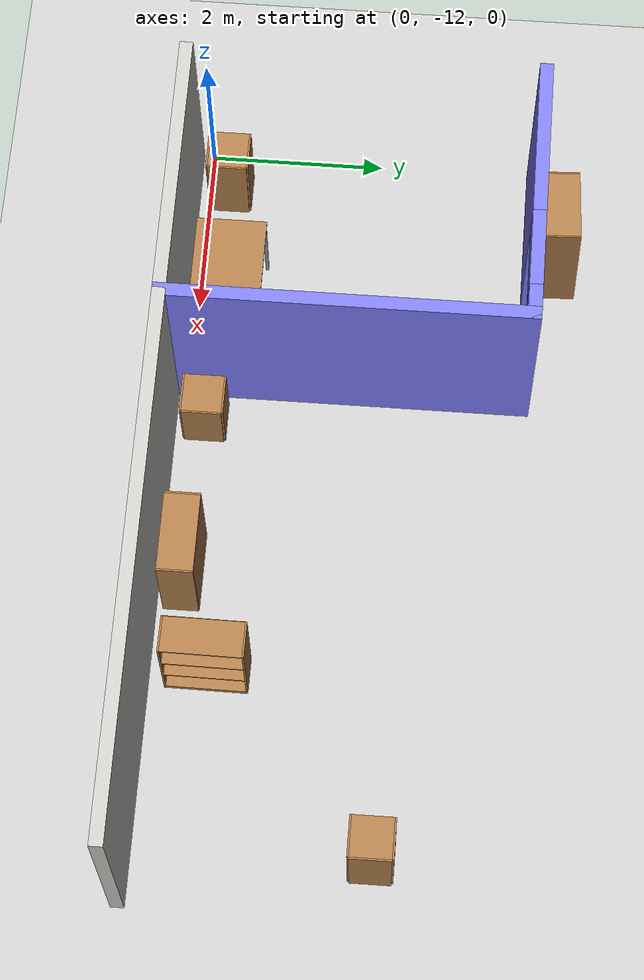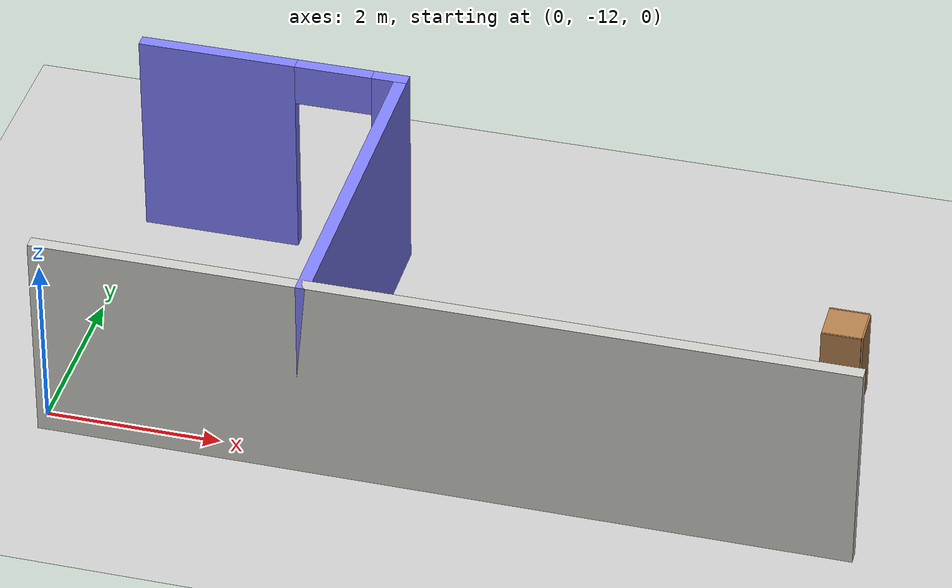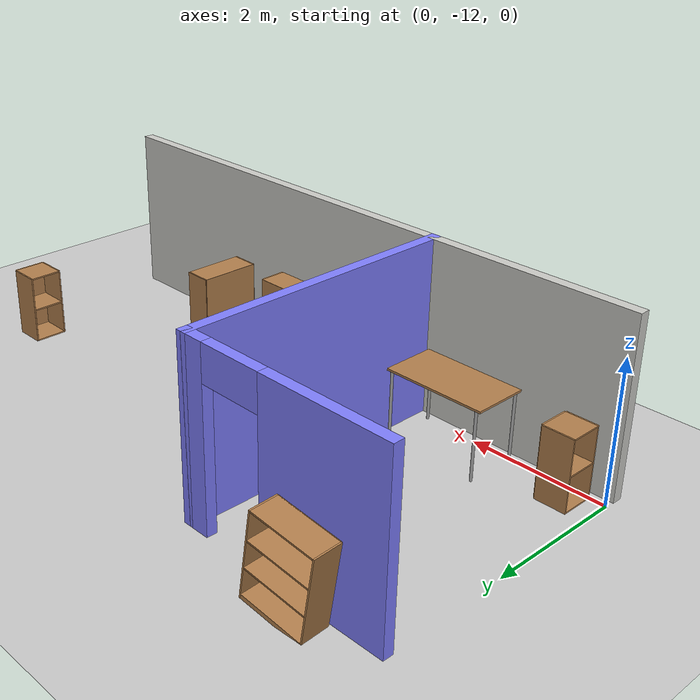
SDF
<sdf version="1.6">
 <world name="default">
  <model name="ground_plane">
   <static>1</static>
   <link name="link">
    <collision name="collision">
     <geometry><plane><normal>0 0 1</normal><size>100 100</size></plane></geometry>
     <surface>
      <contact><collide_bitmask>65535</collide_bitmask></contact>
      <friction><ode><mu>100</mu><mu2>50</mu2></ode></friction>
     </surface>
    </collision>
    <visual name="visual">
     <cast_shadows>0</cast_shadows>
     <geometry><plane><normal>0 0 1</normal><size>100 100</size></plane></geometry>
     <material>
      <script><uri>file://media/materials/scripts/gazebo.material</uri><name>Gazebo/Grey</name></script>
     </material>
    </visual>
   </link>
  </model>
  <model name="table_0">
   <static>1</static>
   <link name="link">
    <collision name="surface">
     <pose>0 0 1 0 -0 0</pose>
     <geometry><box><size>1.5 0.8 0.03</size></box></geometry>
     <surface><friction><ode><mu>0.6</mu><mu2>0.6</mu2></ode></friction></surface>
    </collision>
    <visual name="visual1">
     <pose>0 0 1 0 -0 0</pose>
     <geometry><box><size>1.5 0.8 0.03</size></box></geometry>
     <material>
      <script><uri>file://media/materials/scripts/gazebo.material</uri><name>Gazebo/Wood</name></script>
     </material>
    </visual>
    <collision name="front_left_leg">
     <pose>0.68 0.38 0.5 0 -0 0</pose>
     <geometry><cylinder><radius>0.02</radius><length>1</length></cylinder></geometry>
    </collision>
    <visual name="front_left_leg">
     <pose>0.68 0.38 0.5 0 -0 0</pose>
     <geometry><cylinder><radius>0.02</radius><length>1</length></cylinder></geometry>
     <material>
      <script><uri>file://media/materials/scripts/gazebo.material</uri><name>Gazebo/Grey</name></script>
     </material>
    </visual>
    <collision name="front_right_leg">
     <pose>0.68 -0.38 0.5 0 -0 0</pose>
     <geometry><cylinder><radius>0.02</radius><length>1</length></cylinder></geometry>
    </collision>
    <visual name="front_right_leg">
     <pose>0.68 -0.38 0.5 0 -0 0</pose>
     <geometry><cylinder><radius>0.02</radius><length>1</length></cylinder></geometry>
     <material>
      <script><uri>file://media/materials/scripts/gazebo.material</uri><name>Gazebo/Grey</name></script>
     </material>
    </visual>
    <collision name="back_right_leg">
     <pose>-0.68 -0.38 0.5 0 -0 0</pose>
     <geometry><cylinder><radius>0.02</radius><length>1</length></cylinder></geometry>
    </collision>
    <visual name="back_right_leg">
     <pose>-0.68 -0.38 0.5 0 -0 0</pose>
     <geometry><cylinder><radius>0.02</radius><length>1</length></cylinder></geometry>
     <material>
      <script><uri>file://media/materials/scripts/gazebo.material</uri><name>Gazebo/Grey</name></script>
     </material>
    </visual>
    <collision name="back_left_leg">
     <pose>-0.68 0.38 0.5 0 -0 0</pose>
     <geometry><cylinder><radius>0.02</radius><length>1</length></cylinder></geometry>
    </collision>
    <visual name="back_left_leg">
     <pose>-0.68 0.38 0.5 0 -0 0</pose>
     <geometry><cylinder><radius>0.02</radius><length>1</length></cylinder></geometry>
     <material>
      <script><uri>file://media/materials/scripts/gazebo.material</uri><name>Gazebo/Grey</name></script>
     </material>
    </visual>
   </link>
   <pose>2.11697 -11.6324 0 0 -0 0</pose>
  </model>
  <model name="bookshelf">
   <static>1</static>
   <link name="link">
    <inertial><mass>1</mass></inertial>
    <collision name="back">
     <pose>0 0.005 0.6 0 -0 0</pose>
     <geometry><box><size>0.9 0.01 1.2</size></box></geometry>
    </collision>
    <visual name="visual1">
     <pose>0 0.005 0.6 0 -0 0</pose>
     <geometry><box><size>0.9 0.01 1.2</size></box></geometry>
     <material>
      <script><uri>file://media/materials/scripts/gazebo.material</uri><name>Gazebo/Wood</name></script>
     </material>
    </visual>
    <collision name="left_side">
     <pose>0.45 -0.195 0.6 0 -0 0</pose>
     <geometry><box><size>0.02 0.4 1.2</size></box></geometry>
    </collision>
    <visual name="visual2">
     <pose>0.45 -0.195 0.6 0 -0 0</pose>
     <geometry><box><size>0.02 0.4 1.2</size></box></geometry>
     <material>
      <script><uri>file://media/materials/scripts/gazebo.material</uri><name>Gazebo/Wood</name></script>
     </material>
    </visual>
    <collision name="right_side">
     <pose>-0.45 -0.195 0.6 0 -0 0</pose>
     <geometry><box><size>0.02 0.4 1.2</size></box></geometry>
    </collision>
    <visual name="visual3">
     <pose>-0.45 -0.195 0.6 0 -0 0</pose>
     <geometry><box><size>0.02 0.4 1.2</size></box></geometry>
     <material>
      <script><uri>file://media/materials/scripts/gazebo.material</uri><name>Gazebo/Wood</name></script>
     </material>
    </visual>
    <collision name="bottom">
     <pose>0 -0.195 0.03 0 -0 0</pose>
     <geometry><box><size>0.88 0.4 0.06</size></box></geometry>
    </collision>
    <visual name="visual4">
     <pose>0 -0.195 0.03 0 -0 0</pose>
     <geometry><box><size>0.88 0.4 0.06</size></box></geometry>
     <material>
      <script><uri>file://media/materials/scripts/gazebo.material</uri><name>Gazebo/Wood</name></script>
     </material>
    </visual>
    <collision name="top">
     <pose>0 -0.195 1.19 0 -0 0</pose>
     <geometry><box><size>0.88 0.4 0.02</size></box></geometry>
    </collision>
    <visual name="visual5">
     <pose>0 -0.195 1.19 0 -0 0</pose>
     <geometry><box><size>0.88 0.4 0.02</size></box></geometry>
     <material>
      <script><uri>file://media/materials/scripts/gazebo.material</uri><name>Gazebo/Wood</name></script>
     </material>
    </visual>
    <collision name="low_shelf">
     <pose>0 -0.195 0.43 0 -0 0</pose>
     <geometry><box><size>0.88 0.4 0.02</size></box></geometry>
    </collision>
    <visual name="visual6">
     <pose>0 -0.195 0.43 0 -0 0</pose>
     <geometry><box><size>0.88 0.4 0.02</size></box></geometry>
     <material>
      <script><uri>file://media/materials/scripts/gazebo.material</uri><name>Gazebo/Wood</name></script>
     </material>
    </visual>
    <collision name="high_shelf">
     <pose>0 -0.195 0.8 0 -0 0</pose>
     <geometry><box><size>0.88 0.4 0.02</size></box></geometry>
    </collision>
    <visual name="visual7">
     <pose>0 -0.195 0.8 0 -0 0</pose>
     <geometry><box><size>0.88 0.4 0.02</size></box></geometry>
     <material>
      <script><uri>file://media/materials/scripts/gazebo.material</uri><name>Gazebo/Wood</name></script>
     </material>
    </visual>
   </link>
   <pose>5.28995 -11.6581 0 0 -0 0</pose>
  </model>
  <model name="cabinet">
   <static>1</static>
   <link name="cabinet_bottom_plate">
    <inertial>
     <pose>0 0 -1 0 -0 0</pose>
     <inertia><ixx>2.05</ixx><ixy>0</ixy><ixz>0</ixz><iyy>2.05</iyy><iyz>0</iyz><izz>2.05</izz></inertia>
     <mass>25</mass>
    </inertial>
    <collision name="cabinet_bottom_plate_geom">
     <pose>0 0 0.01 0 -0 0</pose>
     <geometry><box><size>0.45 0.45 0.02</size></box></geometry>
    </collision>
    <visual name="cabinet_bottom_plate_geom_visual">
     <pose>0 0 0.01 0 -0 0</pose>
     <geometry><box><size>0.45 0.45 0.02</size></box></geometry>
     <material>
      <script><uri>file://media/materials/scripts/gazebo.material</uri><name>Gazebo/Wood</name></script>
     </material>
    </visual>
    <collision name="cabinet_bottom_plate_geom_cabinet_back_plate">
     <pose>0.235 0 0.51 0 -0 0</pose>
     <geometry><box><size>0.02 0.45 1.02</size></box></geometry>
    </collision>
    <visual name="cabinet_bottom_plate_geom_cabinet_back_plate_visual">
     <pose>0.235 0 0.51 0 -0 0</pose>
     <geometry><box><size>0.02 0.45 1.02</size></box></geometry>
     <material>
      <script><uri>file://media/materials/scripts/gazebo.material</uri><name>Gazebo/Wood</name></script>
     </material>
    </visual>
    <collision name="cabinet_bottom_plate_geom_cabinet_left_plate">
     <pose>0 0.235 0.51 0 -0 0</pose>
     <geometry><box><size>0.45 0.02 1.02</size></box></geometry>
    </collision>
    <visual name="cabinet_bottom_plate_geom_cabinet_left_plate_visual">
     <pose>0 0.235 0.51 0 -0 0</pose>
     <geometry><box><size>0.45 0.02 1.02</size></box></geometry>
     <material>
      <script><uri>file://media/materials/scripts/gazebo.material</uri><name>Gazebo/Wood</name></script>
     </material>
    </visual>
    <collision name="cabinet_bottom_plate_geom_cabinet_middle_plate">
     <pose>0 0 0.51 0 -0 0</pose>
     <geometry><box><size>0.45 0.45 0.02</size></box></geometry>
    </collision>
    <visual name="cabinet_bottom_plate_geom_cabinet_middle_plate_visual">
     <pose>0 0 0.51 0 -0 0</pose>
     <geometry><box><size>0.45 0.45 0.02</size></box></geometry>
     <material>
      <script><uri>file://media/materials/scripts/gazebo.material</uri><name>Gazebo/Wood</name></script>
     </material>
    </visual>
    <collision name="cabinet_bottom_plate_geom_cabinet_right_plate">
     <pose>0 -0.235 0.51 0 -0 0</pose>
     <geometry><box><size>0.45 0.02 1.02</size></box></geometry>
    </collision>
    <visual name="cabinet_bottom_plate_geom_cabinet_right_plate_visual">
     <pose>0 -0.235 0.51 0 -0 0</pose>
     <geometry><box><size>0.45 0.02 1.02</size></box></geometry>
     <material>
      <script><uri>file://media/materials/scripts/gazebo.material</uri><name>Gazebo/Wood</name></script>
     </material>
    </visual>
    <collision name="cabinet_bottom_plate_geom_cabinet_top_plate">
     <pose>0 0 1.01 0 -0 0</pose>
     <geometry><box><size>0.45 0.45 0.02</size></box></geometry>
    </collision>
    <visual name="cabinet_bottom_plate_geom_cabinet_top_plate_visual">
     <pose>0 0 1.01 0 -0 0</pose>
     <geometry><box><size>0.45 0.45 0.02</size></box></geometry>
     <material>
      <script><uri>file://media/materials/scripts/gazebo.material</uri><name>Gazebo/Wood</name></script>
     </material>
    </visual>
   </link>
   <pose>0.457924 -11.7568 0 0 -0 0</pose>
  </model>
  <model name="my_building">
   <link name="Wall_15">
    <pose>-3 -2 0 0 -0 0</pose>
    <inertial>
     <mass>1</mass>
     <inertia><ixx>1</ixx><ixy>0</ixy><ixz>0</ixz><iyy>1</iyy><iyz>0</iyz><izz>1</izz></inertia>
    </inertial>
    <visual name="Wall_15_Visual_0">
     <pose>-0.656017 0 1.25 0 -0 0</pose>
     <geometry><box><size>1.83797 0.15 2.5</size></box></geometry>
     <material>
      <script><uri>file://media/materials/scripts/gazebo.material</uri><name>Gazebo/Grey</name></script>
      <ambient>0.5 0.5 1 1</ambient>
      <shader type="pixel"><normal_map>__default__</normal_map></shader>
      <diffuse>0.7 0.7 0.7 1</diffuse>
      <specular>0.01 0.01 0.01 1</specular>
      <emissive>0 0 0 1</emissive>
     </material>
     <meta><layer>0</layer></meta>
    </visual>
    <visual name="Wall_15_Visual_1">
     <pose>1.36898 0 1.25 0 -0 0</pose>
     <geometry><box><size>0.412034 0.15 2.5</size></box></geometry>
     <material>
      <script><uri>file://media/materials/scripts/gazebo.material</uri><name>Gazebo/Grey</name></script>
      <ambient>0.5 0.5 1 1</ambient>
      <shader type="pixel"><normal_map>__default__</normal_map></shader>
      <diffuse>0.7 0.7 0.7 1</diffuse>
      <specular>0.01 0.01 0.01 1</specular>
      <emissive>0 0 0 1</emissive>
     </material>
     <meta><layer>0</layer></meta>
    </visual>
    <visual name="Wall_15_Visual_2">
     <pose>0.712966 0 2.25 0 -0 0</pose>
     <geometry><box><size>0.9 0.15 0.5</size></box></geometry>
     <material>
      <script><uri>file://media/materials/scripts/gazebo.material</uri><name>Gazebo/Grey</name></script>
      <ambient>0.5 0.5 1 1</ambient>
      <shader type="pixel"><normal_map>__default__</normal_map></shader>
      <diffuse>0.7 0.7 0.7 1</diffuse>
      <specular>0.01 0.01 0.01 1</specular>
      <emissive>0 0 0 1</emissive>
     </material>
     <meta><layer>0</layer></meta>
    </visual>
    <collision name="Wall_15_Collision_0">
     <pose>-0.656017 0 1.25 0 -0 0</pose>
     <geometry><box><size>1.83797 0.15 2.5</size></box></geometry>
     <surface>
      <friction>
       <ode><mu>1</mu><mu2>1</mu2><fdir1>0 0 0</fdir1><slip1>0</slip1><slip2>0</slip2></ode>
       <torsional>
        <coefficient>1</coefficient>
        <patch_radius>0</patch_radius>
        <surface_radius>0</surface_radius>
        <use_patch_radius>1</use_patch_radius>
        <ode><slip>0</slip></ode>
       </torsional>
      </friction>
      <bounce><restitution_coefficient>0</restitution_coefficient><threshold>1e+06</threshold></bounce>
      <contact>
       <collide_without_contact>0</collide_without_contact>
       <collide_without_contact_bitmask>1</collide_without_contact_bitmask>
       <collide_bitmask>1</collide_bitmask>
       <ode>
        <soft_cfm>0</soft_cfm>
        <soft_erp>0.2</soft_erp>
        <kp>1e+13</kp>
        <kd>1</kd>
        <max_vel>0.01</max_vel>
        <min_depth>0</min_depth>
       </ode>
       <bullet>
        <split_impulse>1</split_impulse>
        <split_impulse_penetration_threshold>-0.01</split_impulse_penetration_threshold>
        <soft_cfm>0</soft_cfm>
        <soft_erp>0.2</soft_erp>
        <kp>1e+13</kp>
        <kd>1</kd>
       </bullet>
      </contact>
     </surface>
    </collision>
    <collision name="Wall_15_Collision_2">
     <pose>0.712966 0 2.25 0 -0 0</pose>
     <geometry><box><size>0.9 0.15 0.5</size></box></geometry>
     <surface>
      <friction>
       <ode><mu>1</mu><mu2>1</mu2><fdir1>0 0 0</fdir1><slip1>0</slip1><slip2>0</slip2></ode>
       <torsional>
        <coefficient>1</coefficient>
        <patch_radius>0</patch_radius>
        <surface_radius>0</surface_radius>
        <use_patch_radius>1</use_patch_radius>
        <ode><slip>0</slip></ode>
       </torsional>
      </friction>
      <bounce><restitution_coefficient>0</restitution_coefficient><threshold>1e+06</threshold></bounce>
      <contact>
       <collide_without_contact>0</collide_without_contact>
       <collide_without_contact_bitmask>1</collide_without_contact_bitmask>
       <collide_bitmask>1</collide_bitmask>
       <ode>
        <soft_cfm>0</soft_cfm>
        <soft_erp>0.2</soft_erp>
        <kp>1e+13</kp>
        <kd>1</kd>
        <max_vel>0.01</max_vel>
        <min_depth>0</min_depth>
       </ode>
       <bullet>
        <split_impulse>1</split_impulse>
        <split_impulse_penetration_threshold>-0.01</split_impulse_penetration_threshold>
        <soft_cfm>0</soft_cfm>
        <soft_erp>0.2</soft_erp>
        <kp>1e+13</kp>
        <kd>1</kd>
       </bullet>
      </contact>
     </surface>
    </collision>
    <collision name="Wall_15_Collision_1">
     <pose>1.36898 0 1.25 0 -0 0</pose>
     <geometry><box><size>0.412034 0.15 2.5</size></box></geometry>
     <surface>
      <friction>
       <ode><mu>1</mu><mu2>1</mu2><fdir1>0 0 0</fdir1><slip1>0</slip1><slip2>0</slip2></ode>
       <torsional>
        <coefficient>1</coefficient>
        <patch_radius>0</patch_radius>
        <surface_radius>0</surface_radius>
        <use_patch_radius>1</use_patch_radius>
        <ode><slip>0</slip></ode>
       </torsional>
      </friction>
      <bounce><restitution_coefficient>0</restitution_coefficient><threshold>1e+06</threshold></bounce>
      <contact>
       <collide_without_contact>0</collide_without_contact>
       <collide_without_contact_bitmask>1</collide_without_contact_bitmask>
       <collide_bitmask>1</collide_bitmask>
       <ode>
        <soft_cfm>0</soft_cfm>
        <soft_erp>0.2</soft_erp>
        <kp>1e+13</kp>
        <kd>1</kd>
        <max_vel>0.01</max_vel>
        <min_depth>0</min_depth>
       </ode>
       <bullet>
        <split_impulse>1</split_impulse>
        <split_impulse_penetration_threshold>-0.01</split_impulse_penetration_threshold>
        <soft_cfm>0</soft_cfm>
        <soft_erp>0.2</soft_erp>
        <kp>1e+13</kp>
        <kd>1</kd>
       </bullet>
      </contact>
     </surface>
    </collision>
   </link>
   <link name="Wall_25">
    <pose>-1.5 -4 0 0 0 -1.5708</pose>
    <inertial>
     <mass>1</mass>
     <inertia><ixx>1</ixx><ixy>0</ixy><ixz>0</ixz><iyy>1</iyy><iyz>0</iyz><izz>1</izz></inertia>
    </inertial>
    <visual name="Wall_25_Visual">
     <pose>0 0 1.25 0 -0 0</pose>
     <geometry><box><size>4.15 0.15 2.5</size></box></geometry>
     <material>
      <script><uri>file://media/materials/scripts/gazebo.material</uri><name>Gazebo/Grey</name></script>
      <ambient>0.5 0.5 1 1</ambient>
      <shader type="pixel"><normal_map>__default__</normal_map></shader>
      <diffuse>0.7 0.7 0.7 1</diffuse>
      <specular>0.01 0.01 0.01 1</specular>
      <emissive>0 0 0 1</emissive>
     </material>
     <meta><layer>0</layer></meta>
    </visual>
    <collision name="Wall_25_Collision">
     <pose>0 0 1.25 0 -0 0</pose>
     <geometry><box><size>4.15 0.15 2.5</size></box></geometry>
     <surface>
      <friction>
       <ode><mu>1</mu><mu2>1</mu2><fdir1>0 0 0</fdir1><slip1>0</slip1><slip2>0</slip2></ode>
       <torsional>
        <coefficient>1</coefficient>
        <patch_radius>0</patch_radius>
        <surface_radius>0</surface_radius>
        <use_patch_radius>1</use_patch_radius>
        <ode><slip>0</slip></ode>
       </torsional>
      </friction>
      <bounce><restitution_coefficient>0</restitution_coefficient><threshold>1e+06</threshold></bounce>
      <contact>
       <collide_without_contact>0</collide_without_contact>
       <collide_without_contact_bitmask>1</collide_without_contact_bitmask>
       <collide_bitmask>1</collide_bitmask>
       <ode>
        <soft_cfm>0</soft_cfm>
        <soft_erp>0.2</soft_erp>
        <kp>1e+13</kp>
        <kd>1</kd>
        <max_vel>0.01</max_vel>
        <min_depth>0</min_depth>
       </ode>
       <bullet>
        <split_impulse>1</split_impulse>
        <split_impulse_penetration_threshold>-0.01</split_impulse_penetration_threshold>
        <soft_cfm>0</soft_cfm>
        <soft_erp>0.2</soft_erp>
        <kp>1e+13</kp>
        <kd>1</kd>
       </bullet>
      </contact>
     </surface>
    </collision>
   </link>
   <link name="Wall_7">
    <pose>0 -6 0 0 -0 0</pose>
    <visual name="Wall_7_Visual">
     <pose>0 0 1.25 0 -0 0</pose>
     <geometry><box><size>9.15 0.15 2.5</size></box></geometry>
     <material>
      <script><uri>file://media/materials/scripts/gazebo.material</uri><name>Gazebo/CeilingTiled</name></script>
      <ambient>0.760784 0.662745 0.627451 1</ambient>
      <shader type="pixel"/>
      <diffuse>1 1 1 1</diffuse>
      <specular>0 0 0 1</specular>
      <emissive>0 0 0 1</emissive>
     </material>
     <meta><layer>0</layer></meta>
    </visual>
    <collision name="Wall_7_Collision">
     <pose>0 0 1.25 0 -0 0</pose>
     <geometry><box><size>9.15 0.15 2.5</size></box></geometry>
     <surface>
      <friction>
       <ode><mu>1</mu><mu2>1</mu2><fdir1>0 0 0</fdir1><slip1>0</slip1><slip2>0</slip2></ode>
       <torsional>
        <coefficient>1</coefficient>
        <patch_radius>0</patch_radius>
        <surface_radius>0</surface_radius>
        <use_patch_radius>1</use_patch_radius>
        <ode><slip>0</slip></ode>
       </torsional>
      </friction>
      <bounce><restitution_coefficient>0</restitution_coefficient><threshold>1e+06</threshold></bounce>
      <contact>
       <collide_without_contact>0</collide_without_contact>
       <collide_without_contact_bitmask>1</collide_without_contact_bitmask>
       <collide_bitmask>1</collide_bitmask>
       <ode>
        <soft_cfm>0</soft_cfm>
        <soft_erp>0.2</soft_erp>
        <kp>1e+13</kp>
        <kd>1</kd>
        <max_vel>0.01</max_vel>
        <min_depth>0</min_depth>
       </ode>
       <bullet>
        <split_impulse>1</split_impulse>
        <split_impulse_penetration_threshold>-0.01</split_impulse_penetration_threshold>
        <soft_cfm>0</soft_cfm>
        <soft_erp>0.2</soft_erp>
        <kp>1e+13</kp>
        <kd>1</kd>
       </bullet>
      </contact>
     </surface>
    </collision>
   </link>
   <static>1</static>
   <pose>4.55195 -6.20018 0 0 -0 0</pose>
  </model>
  <model name="bookshelf_0">
   <static>1</static>
   <link name="link">
    <inertial><mass>1</mass></inertial>
    <collision name="back">
     <pose>0 0.005 0.6 0 -0 0</pose>
     <geometry><box><size>0.9 0.01 1.2</size></box></geometry>
    </collision>
    <visual name="visual1">
     <pose>0 0.005 0.6 0 -0 0</pose>
     <geometry><box><size>0.9 0.01 1.2</size></box></geometry>
     <material>
      <script><uri>file://media/materials/scripts/gazebo.material</uri><name>Gazebo/Wood</name></script>
     </material>
    </visual>
    <collision name="left_side">
     <pose>0.45 -0.195 0.6 0 -0 0</pose>
     <geometry><box><size>0.02 0.4 1.2</size></box></geometry>
    </collision>
    <visual name="visual2">
     <pose>0.45 -0.195 0.6 0 -0 0</pose>
     <geometry><box><size>0.02 0.4 1.2</size></box></geometry>
     <material>
      <script><uri>file://media/materials/scripts/gazebo.material</uri><name>Gazebo/Wood</name></script>
     </material>
    </visual>
    <collision name="right_side">
     <pose>-0.45 -0.195 0.6 0 -0 0</pose>
     <geometry><box><size>0.02 0.4 1.2</size></box></geometry>
    </collision>
    <visual name="visual3">
     <pose>-0.45 -0.195 0.6 0 -0 0</pose>
     <geometry><box><size>0.02 0.4 1.2</size></box></geometry>
     <material>
      <script><uri>file://media/materials/scripts/gazebo.material</uri><name>Gazebo/Wood</name></script>
     </material>
    </visual>
    <collision name="bottom">
     <pose>0 -0.195 0.03 0 -0 0</pose>
     <geometry><box><size>0.88 0.4 0.06</size></box></geometry>
    </collision>
    <visual name="visual4">
     <pose>0 -0.195 0.03 0 -0 0</pose>
     <geometry><box><size>0.88 0.4 0.06</size></box></geometry>
     <material>
      <script><uri>file://media/materials/scripts/gazebo.material</uri><name>Gazebo/Wood</name></script>
     </material>
    </visual>
    <collision name="top">
     <pose>0 -0.195 1.19 0 -0 0</pose>
     <geometry><box><size>0.88 0.4 0.02</size></box></geometry>
    </collision>
    <visual name="visual5">
     <pose>0 -0.195 1.19 0 -0 0</pose>
     <geometry><box><size>0.88 0.4 0.02</size></box></geometry>
     <material>
      <script><uri>file://media/materials/scripts/gazebo.material</uri><name>Gazebo/Wood</name></script>
     </material>
    </visual>
    <collision name="low_shelf">
     <pose>0 -0.195 0.43 0 -0 0</pose>
     <geometry><box><size>0.88 0.4 0.02</size></box></geometry>
    </collision>
    <visual name="visual6">
     <pose>0 -0.195 0.43 0 -0 0</pose>
     <geometry><box><size>0.88 0.4 0.02</size></box></geometry>
     <material>
      <script><uri>file://media/materials/scripts/gazebo.material</uri><name>Gazebo/Wood</name></script>
     </material>
    </visual>
    <collision name="high_shelf">
     <pose>0 -0.195 0.8 0 -0 0</pose>
     <geometry><box><size>0.88 0.4 0.02</size></box></geometry>
    </collision>
    <visual name="visual7">
     <pose>0 -0.195 0.8 0 -0 0</pose>
     <geometry><box><size>0.88 0.4 0.02</size></box></geometry>
     <material>
      <script><uri>file://media/materials/scripts/gazebo.material</uri><name>Gazebo/Wood</name></script>
     </material>
    </visual>
   </link>
   <pose>6.26814 -11.484 0 0 -0 1.56013</pose>
  </model>
  <model name="cabinet_2">
   <static>1</static>
   <link name="cabinet_bottom_plate">
    <inertial>
     <pose>0 0 -1 0 -0 0</pose>
     <inertia><ixx>2.05</ixx><ixy>0</ixy><ixz>0</ixz><iyy>2.05</iyy><iyz>0</iyz><izz>2.05</izz></inertia>
     <mass>25</mass>
    </inertial>
    <collision name="cabinet_bottom_plate_geom">
     <pose>0 0 0.01 0 -0 0</pose>
     <geometry><box><size>0.45 0.45 0.02</size></box></geometry>
    </collision>
    <visual name="cabinet_bottom_plate_geom_visual">
     <pose>0 0 0.01 0 -0 0</pose>
     <geometry><box><size>0.45 0.45 0.02</size></box></geometry>
     <material>
      <script><uri>file://media/materials/scripts/gazebo.material</uri><name>Gazebo/Wood</name></script>
     </material>
    </visual>
    <collision name="cabinet_bottom_plate_geom_cabinet_back_plate">
     <pose>0.235 0 0.51 0 -0 0</pose>
     <geometry><box><size>0.02 0.45 1.02</size></box></geometry>
    </collision>
    <visual name="cabinet_bottom_plate_geom_cabinet_back_plate_visual">
     <pose>0.235 0 0.51 0 -0 0</pose>
     <geometry><box><size>0.02 0.45 1.02</size></box></geometry>
     <material>
      <script><uri>file://media/materials/scripts/gazebo.material</uri><name>Gazebo/Wood</name></script>
     </material>
    </visual>
    <collision name="cabinet_bottom_plate_geom_cabinet_left_plate">
     <pose>0 0.235 0.51 0 -0 0</pose>
     <geometry><box><size>0.45 0.02 1.02</size></box></geometry>
    </collision>
    <visual name="cabinet_bottom_plate_geom_cabinet_left_plate_visual">
     <pose>0 0.235 0.51 0 -0 0</pose>
     <geometry><box><size>0.45 0.02 1.02</size></box></geometry>
     <material>
      <script><uri>file://media/materials/scripts/gazebo.material</uri><name>Gazebo/Wood</name></script>
     </material>
    </visual>
    <collision name="cabinet_bottom_plate_geom_cabinet_middle_plate">
     <pose>0 0 0.51 0 -0 0</pose>
     <geometry><box><size>0.45 0.45 0.02</size></box></geometry>
    </collision>
    <visual name="cabinet_bottom_plate_geom_cabinet_middle_plate_visual">
     <pose>0 0 0.51 0 -0 0</pose>
     <geometry><box><size>0.45 0.45 0.02</size></box></geometry>
     <material>
      <script><uri>file://media/materials/scripts/gazebo.material</uri><name>Gazebo/Wood</name></script>
     </material>
    </visual>
    <collision name="cabinet_bottom_plate_geom_cabinet_right_plate">
     <pose>0 -0.235 0.51 0 -0 0</pose>
     <geometry><box><size>0.45 0.02 1.02</size></box></geometry>
    </collision>
    <visual name="cabinet_bottom_plate_geom_cabinet_right_plate_visual">
     <pose>0 -0.235 0.51 0 -0 0</pose>
     <geometry><box><size>0.45 0.02 1.02</size></box></geometry>
     <material>
      <script><uri>file://media/materials/scripts/gazebo.material</uri><name>Gazebo/Wood</name></script>
     </material>
    </visual>
    <collision name="cabinet_bottom_plate_geom_cabinet_top_plate">
     <pose>0 0 1.01 0 -0 0</pose>
     <geometry><box><size>0.45 0.45 0.02</size></box></geometry>
    </collision>
    <visual name="cabinet_bottom_plate_geom_cabinet_top_plate_visual">
     <pose>0 0 1.01 0 -0 0</pose>
     <geometry><box><size>0.45 0.45 0.02</size></box></geometry>
     <material>
      <script><uri>file://media/materials/scripts/gazebo.material</uri><name>Gazebo/Wood</name></script>
     </material>
    </visual>
   </link>
   <pose>8.46388 -9.55467 0.063375 0 -0 0</pose>
  </model>
  <model name="cabinet_3">
   <link name="cabinet_bottom_plate">
    <inertial>
     <pose>0 0 -1 0 -0 0</pose>
     <inertia><ixx>2.05</ixx><ixy>0</ixy><ixz>0</ixz><iyy>2.05</iyy><iyz>0</iyz><izz>2.05</izz></inertia>
     <mass>25</mass>
    </inertial>
    <visual name="cabinet_bottom_plate_geom_cabinet_back_plate_visual">
     <pose>0.235 0 0.51 0 -0 0</pose>
     <geometry><box><size>0.02 0.45 1.02</size></box></geometry>
     <material>
      <script><uri>file://media/materials/scripts/gazebo.material</uri><name>Gazebo/Wood</name></script>
      <shader type="pixel"><normal_map>__default__</normal_map></shader>
      <ambient>1 0 0 1</ambient>
      <diffuse>1 1 1 1</diffuse>
      <specular>0.2 0.2 0.2 1</specular>
      <emissive>0 0 0 1</emissive>
     </material>
    </visual>
    <visual name="cabinet_bottom_plate_geom_cabinet_left_plate_visual">
     <pose>0 0.235 0.51 0 -0 0</pose>
     <geometry><box><size>0.45 0.02 1.02</size></box></geometry>
     <material>
      <script><uri>file://media/materials/scripts/gazebo.material</uri><name>Gazebo/Wood</name></script>
      <shader type="pixel"><normal_map>__default__</normal_map></shader>
      <ambient>1 0 0 1</ambient>
      <diffuse>1 1 1 1</diffuse>
      <specular>0.2 0.2 0.2 1</specular>
      <emissive>0 0 0 1</emissive>
     </material>
    </visual>
    <visual name="cabinet_bottom_plate_geom_cabinet_top_plate_visual">
     <pose>0 0 1.01 0 -0 0</pose>
     <geometry><box><size>0.45 0.45 0.02</size></box></geometry>
     <material>
      <script><uri>file://media/materials/scripts/gazebo.material</uri><name>Gazebo/Wood</name></script>
      <shader type="pixel"><normal_map>__default__</normal_map></shader>
      <ambient>1 1 1 1</ambient>
      <diffuse>1 1 1 1</diffuse>
      <specular>0.2 0.2 0.2 1</specular>
      <emissive>0 0 0 1</emissive>
     </material>
    </visual>
    <visual name="cabinet_bottom_plate_geom_cabinet_middle_plate_visual">
     <pose>0 0 0.51 0 -0 0</pose>
     <geometry><box><size>0.45 0.45 0.02</size></box></geometry>
     <material>
      <script><uri>file://media/materials/scripts/gazebo.material</uri><name>Gazebo/Wood</name></script>
      <shader type="pixel"><normal_map>__default__</normal_map></shader>
      <ambient>1 0 0 1</ambient>
      <diffuse>1 1 1 1</diffuse>
      <specular>0.2 0.2 0.2 1</specular>
      <emissive>0 0 0 1</emissive>
     </material>
    </visual>
    <visual name="cabinet_bottom_plate_geom_cabinet_right_plate_visual">
     <pose>0 -0.235 0.51 0 -0 0</pose>
     <geometry><box><size>0.45 0.02 1.02</size></box></geometry>
     <material>
      <script><uri>file://media/materials/scripts/gazebo.material</uri><name>Gazebo/Wood</name></script>
      <shader type="pixel"><normal_map>__default__</normal_map></shader>
      <ambient>1 0 0 1</ambient>
      <diffuse>1 1 1 1</diffuse>
      <specular>0.2 0.2 0.2 1</specular>
      <emissive>0 0 0 1</emissive>
     </material>
    </visual>
    <visual name="cabinet_bottom_plate_geom_visual">
     <pose>0 0 0.01 0 -0 0</pose>
     <geometry><box><size>0.45 0.45 0.02</size></box></geometry>
     <material>
      <script><uri>file://media/materials/scripts/gazebo.material</uri><name>Gazebo/Wood</name></script>
      <shader type="pixel"><normal_map>__default__</normal_map></shader>
      <ambient>1 0 0 1</ambient>
      <diffuse>1 1 1 1</diffuse>
      <specular>0.2 0.2 0.2 1</specular>
      <emissive>0 0 0 1</emissive>
     </material>
    </visual>
    <collision name="cabinet_bottom_plate_geom_cabinet_top_plate">
     <pose>0 0 1.01 0 -0 0</pose>
     <geometry><box><size>0.45 0.45 0.02</size></box></geometry>
     <surface>
      <friction>
       <ode><mu>1</mu><mu2>1</mu2><fdir1>0 0 0</fdir1><slip1>0</slip1><slip2>0</slip2></ode>
       <torsional>
        <coefficient>1</coefficient>
        <patch_radius>0</patch_radius>
        <surface_radius>0</surface_radius>
        <use_patch_radius>1</use_patch_radius>
        <ode><slip>0</slip></ode>
       </torsional>
      </friction>
      <bounce><restitution_coefficient>0</restitution_coefficient><threshold>1e+06</threshold></bounce>
      <contact>
       <collide_without_contact>0</collide_without_contact>
       <collide_without_contact_bitmask>1</collide_without_contact_bitmask>
       <collide_bitmask>1</collide_bitmask>
       <ode>
        <soft_cfm>0</soft_cfm>
        <soft_erp>0.2</soft_erp>
        <kp>1e+13</kp>
        <kd>1</kd>
        <max_vel>0.01</max_vel>
        <min_depth>0</min_depth>
       </ode>
       <bullet>
        <split_impulse>1</split_impulse>
        <split_impulse_penetration_threshold>-0.01</split_impulse_penetration_threshold>
        <soft_cfm>0</soft_cfm>
        <soft_erp>0.2</soft_erp>
        <kp>1e+13</kp>
        <kd>1</kd>
       </bullet>
      </contact>
     </surface>
    </collision>
    <collision name="cabinet_bottom_plate_geom">
     <pose>0 0 0.01 0 -0 0</pose>
     <geometry><box><size>0.45 0.45 0.02</size></box></geometry>
     <surface>
      <friction>
       <ode><mu>1</mu><mu2>1</mu2><fdir1>0 0 0</fdir1><slip1>0</slip1><slip2>0</slip2></ode>
       <torsional>
        <coefficient>1</coefficient>
        <patch_radius>0</patch_radius>
        <surface_radius>0</surface_radius>
        <use_patch_radius>1</use_patch_radius>
        <ode><slip>0</slip></ode>
       </torsional>
      </friction>
      <bounce><restitution_coefficient>0</restitution_coefficient><threshold>1e+06</threshold></bounce>
      <contact>
       <collide_without_contact>0</collide_without_contact>
       <collide_without_contact_bitmask>1</collide_without_contact_bitmask>
       <collide_bitmask>1</collide_bitmask>
       <ode>
        <soft_cfm>0</soft_cfm>
        <soft_erp>0.2</soft_erp>
        <kp>1e+13</kp>
        <kd>1</kd>
        <max_vel>0.01</max_vel>
        <min_depth>0</min_depth>
       </ode>
       <bullet>
        <split_impulse>1</split_impulse>
        <split_impulse_penetration_threshold>-0.01</split_impulse_penetration_threshold>
        <soft_cfm>0</soft_cfm>
        <soft_erp>0.2</soft_erp>
        <kp>1e+13</kp>
        <kd>1</kd>
       </bullet>
      </contact>
     </surface>
    </collision>
    <collision name="cabinet_bottom_plate_geom_cabinet_right_plate">
     <pose>0 -0.235 0.51 0 -0 0</pose>
     <geometry><box><size>0.45 0.02 1.02</size></box></geometry>
     <surface>
      <friction>
       <ode><mu>1</mu><mu2>1</mu2><fdir1>0 0 0</fdir1><slip1>0</slip1><slip2>0</slip2></ode>
       <torsional>
        <coefficient>1</coefficient>
        <patch_radius>0</patch_radius>
        <surface_radius>0</surface_radius>
        <use_patch_radius>1</use_patch_radius>
        <ode><slip>0</slip></ode>
       </torsional>
      </friction>
      <bounce><restitution_coefficient>0</restitution_coefficient><threshold>1e+06</threshold></bounce>
      <contact>
       <collide_without_contact>0</collide_without_contact>
       <collide_without_contact_bitmask>1</collide_without_contact_bitmask>
       <collide_bitmask>1</collide_bitmask>
       <ode>
        <soft_cfm>0</soft_cfm>
        <soft_erp>0.2</soft_erp>
        <kp>1e+13</kp>
        <kd>1</kd>
        <max_vel>0.01</max_vel>
        <min_depth>0</min_depth>
       </ode>
       <bullet>
        <split_impulse>1</split_impulse>
        <split_impulse_penetration_threshold>-0.01</split_impulse_penetration_threshold>
        <soft_cfm>0</soft_cfm>
        <soft_erp>0.2</soft_erp>
        <kp>1e+13</kp>
        <kd>1</kd>
       </bullet>
      </contact>
     </surface>
    </collision>
    <collision name="cabinet_bottom_plate_geom_cabinet_back_plate">
     <pose>0.235 0 0.51 0 -0 0</pose>
     <geometry><box><size>0.02 0.45 1.02</size></box></geometry>
     <surface>
      <friction>
       <ode><mu>1</mu><mu2>1</mu2><fdir1>0 0 0</fdir1><slip1>0</slip1><slip2>0</slip2></ode>
       <torsional>
        <coefficient>1</coefficient>
        <patch_radius>0</patch_radius>
        <surface_radius>0</surface_radius>
        <use_patch_radius>1</use_patch_radius>
        <ode><slip>0</slip></ode>
       </torsional>
      </friction>
      <bounce><restitution_coefficient>0</restitution_coefficient><threshold>1e+06</threshold></bounce>
      <contact>
       <collide_without_contact>0</collide_without_contact>
       <collide_without_contact_bitmask>1</collide_without_contact_bitmask>
       <collide_bitmask>1</collide_bitmask>
       <ode>
        <soft_cfm>0</soft_cfm>
        <soft_erp>0.2</soft_erp>
        <kp>1e+13</kp>
        <kd>1</kd>
        <max_vel>0.01</max_vel>
        <min_depth>0</min_depth>
       </ode>
       <bullet>
        <split_impulse>1</split_impulse>
        <split_impulse_penetration_threshold>-0.01</split_impulse_penetration_threshold>
        <soft_cfm>0</soft_cfm>
        <soft_erp>0.2</soft_erp>
        <kp>1e+13</kp>
        <kd>1</kd>
       </bullet>
      </contact>
     </surface>
    </collision>
    <collision name="cabinet_bottom_plate_geom_cabinet_left_plate">
     <pose>0 0.235 0.51 0 -0 0</pose>
     <geometry><box><size>0.45 0.02 1.02</size></box></geometry>
     <surface>
      <friction>
       <ode><mu>1</mu><mu2>1</mu2><fdir1>0 0 0</fdir1><slip1>0</slip1><slip2>0</slip2></ode>
       <torsional>
        <coefficient>1</coefficient>
        <patch_radius>0</patch_radius>
        <surface_radius>0</surface_radius>
        <use_patch_radius>1</use_patch_radius>
        <ode><slip>0</slip></ode>
       </torsional>
      </friction>
      <bounce><restitution_coefficient>0</restitution_coefficient><threshold>1e+06</threshold></bounce>
      <contact>
       <collide_without_contact>0</collide_without_contact>
       <collide_without_contact_bitmask>1</collide_without_contact_bitmask>
       <collide_bitmask>1</collide_bitmask>
       <ode>
        <soft_cfm>0</soft_cfm>
        <soft_erp>0.2</soft_erp>
        <kp>1e+13</kp>
        <kd>1</kd>
        <max_vel>0.01</max_vel>
        <min_depth>0</min_depth>
       </ode>
       <bullet>
        <split_impulse>1</split_impulse>
        <split_impulse_penetration_threshold>-0.01</split_impulse_penetration_threshold>
        <soft_cfm>0</soft_cfm>
        <soft_erp>0.2</soft_erp>
        <kp>1e+13</kp>
        <kd>1</kd>
       </bullet>
      </contact>
     </surface>
    </collision>
    <collision name="cabinet_bottom_plate_geom_cabinet_middle_plate">
     <pose>0 0 0.51 0 -0 0</pose>
     <geometry><box><size>0.45 0.45 0.02</size></box></geometry>
     <surface>
      <friction>
       <ode><mu>1</mu><mu2>1</mu2><fdir1>0 0 0</fdir1><slip1>0</slip1><slip2>0</slip2></ode>
       <torsional>
        <coefficient>1</coefficient>
        <patch_radius>0</patch_radius>
        <surface_radius>0</surface_radius>
        <use_patch_radius>1</use_patch_radius>
        <ode><slip>0</slip></ode>
       </torsional>
      </friction>
      <bounce><restitution_coefficient>0</restitution_coefficient><threshold>1e+06</threshold></bounce>
      <contact>
       <collide_without_contact>0</collide_without_contact>
       <collide_without_contact_bitmask>1</collide_without_contact_bitmask>
       <collide_bitmask>1</collide_bitmask>
       <ode>
        <soft_cfm>0</soft_cfm>
        <soft_erp>0.2</soft_erp>
        <kp>1e+13</kp>
        <kd>1</kd>
        <max_vel>0.01</max_vel>
        <min_depth>0</min_depth>
       </ode>
       <bullet>
        <split_impulse>1</split_impulse>
        <split_impulse_penetration_threshold>-0.01</split_impulse_penetration_threshold>
        <soft_cfm>0</soft_cfm>
        <soft_erp>0.2</soft_erp>
        <kp>1e+13</kp>
        <kd>1</kd>
       </bullet>
      </contact>
     </surface>
    </collision>
   </link>
   <static>1</static>
   <pose>3.4373 -11.7895 -0.269798 0 -0 0</pose>
  </model>
  <model name="bookshelf_2">
   <static>1</static>
   <link name="link">
    <inertial><mass>1</mass></inertial>
    <collision name="back">
     <pose>0 0.005 0.6 0 -0 0</pose>
     <geometry><box><size>0.9 0.01 1.2</size></box></geometry>
    </collision>
    <visual name="visual1">
     <pose>0 0.005 0.6 0 -0 0</pose>
     <geometry><box><size>0.9 0.01 1.2</size></box></geometry>
     <material>
      <script><uri>file://media/materials/scripts/gazebo.material</uri><name>Gazebo/Wood</name></script>
     </material>
    </visual>
    <collision name="left_side">
     <pose>0.45 -0.195 0.6 0 -0 0</pose>
     <geometry><box><size>0.02 0.4 1.2</size></box></geometry>
    </collision>
    <visual name="visual2">
     <pose>0.45 -0.195 0.6 0 -0 0</pose>
     <geometry><box><size>0.02 0.4 1.2</size></box></geometry>
     <material>
      <script><uri>file://media/materials/scripts/gazebo.material</uri><name>Gazebo/Wood</name></script>
     </material>
    </visual>
    <collision name="right_side">
     <pose>-0.45 -0.195 0.6 0 -0 0</pose>
     <geometry><box><size>0.02 0.4 1.2</size></box></geometry>
    </collision>
    <visual name="visual3">
     <pose>-0.45 -0.195 0.6 0 -0 0</pose>
     <geometry><box><size>0.02 0.4 1.2</size></box></geometry>
     <material>
      <script><uri>file://media/materials/scripts/gazebo.material</uri><name>Gazebo/Wood</name></script>
     </material>
    </visual>
    <collision name="bottom">
     <pose>0 -0.195 0.03 0 -0 0</pose>
     <geometry><box><size>0.88 0.4 0.06</size></box></geometry>
    </collision>
    <visual name="visual4">
     <pose>0 -0.195 0.03 0 -0 0</pose>
     <geometry><box><size>0.88 0.4 0.06</size></box></geometry>
     <material>
      <script><uri>file://media/materials/scripts/gazebo.material</uri><name>Gazebo/Wood</name></script>
     </material>
    </visual>
    <collision name="top">
     <pose>0 -0.195 1.19 0 -0 0</pose>
     <geometry><box><size>0.88 0.4 0.02</size></box></geometry>
    </collision>
    <visual name="visual5">
     <pose>0 -0.195 1.19 0 -0 0</pose>
     <geometry><box><size>0.88 0.4 0.02</size></box></geometry>
     <material>
      <script><uri>file://media/materials/scripts/gazebo.material</uri><name>Gazebo/Wood</name></script>
     </material>
    </visual>
    <collision name="low_shelf">
     <pose>0 -0.195 0.43 0 -0 0</pose>
     <geometry><box><size>0.88 0.4 0.02</size></box></geometry>
    </collision>
    <visual name="visual6">
     <pose>0 -0.195 0.43 0 -0 0</pose>
     <geometry><box><size>0.88 0.4 0.02</size></box></geometry>
     <material>
      <script><uri>file://media/materials/scripts/gazebo.material</uri><name>Gazebo/Wood</name></script>
     </material>
    </visual>
    <collision name="high_shelf">
     <pose>0 -0.195 0.8 0 -0 0</pose>
     <geometry><box><size>0.88 0.4 0.02</size></box></geometry>
    </collision>
    <visual name="visual7">
     <pose>0 -0.195 0.8 0 -0 0</pose>
     <geometry><box><size>0.88 0.4 0.02</size></box></geometry>
     <material>
      <script><uri>file://media/materials/scripts/gazebo.material</uri><name>Gazebo/Wood</name></script>
     </material>
    </visual>
   </link>
   <pose>1.17538 -8.07683 0 -0 0.140523 -3.10049</pose>
  </model>
 </world>
</sdf>
